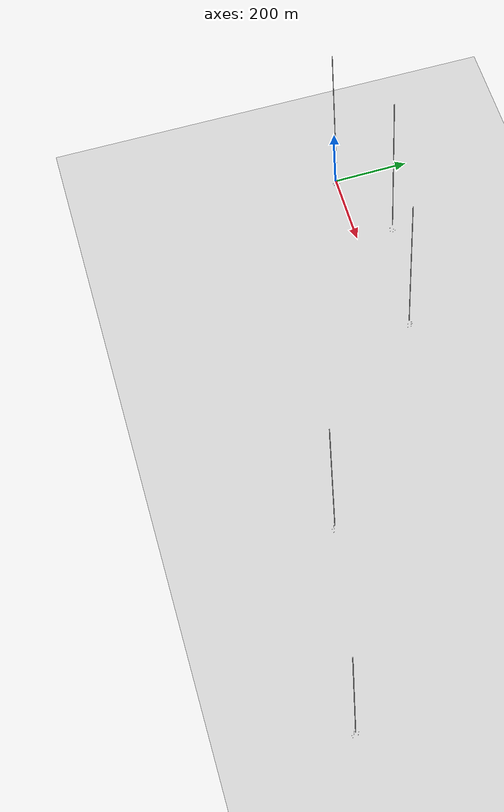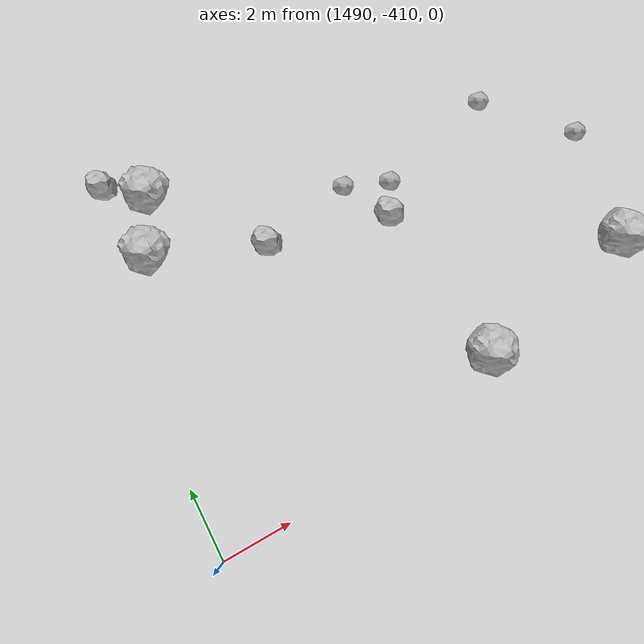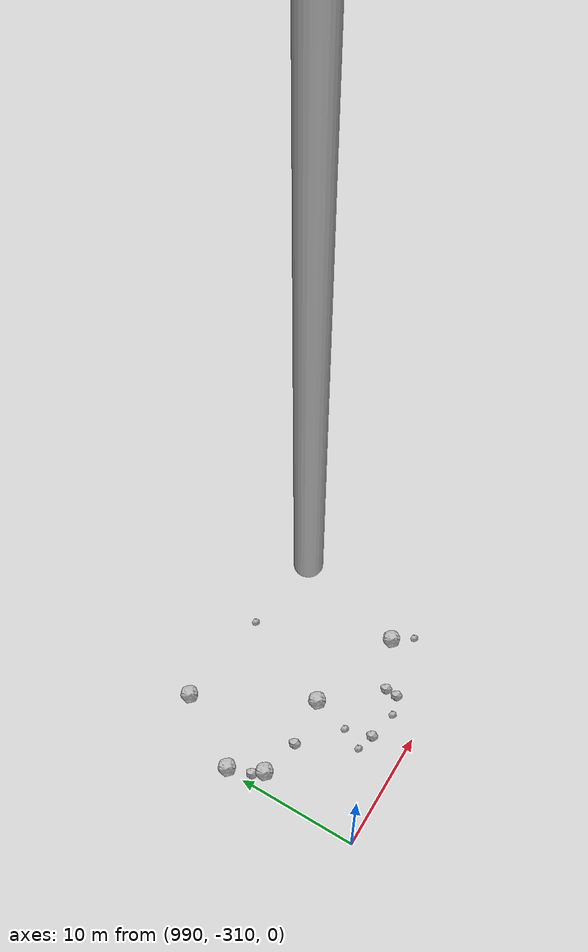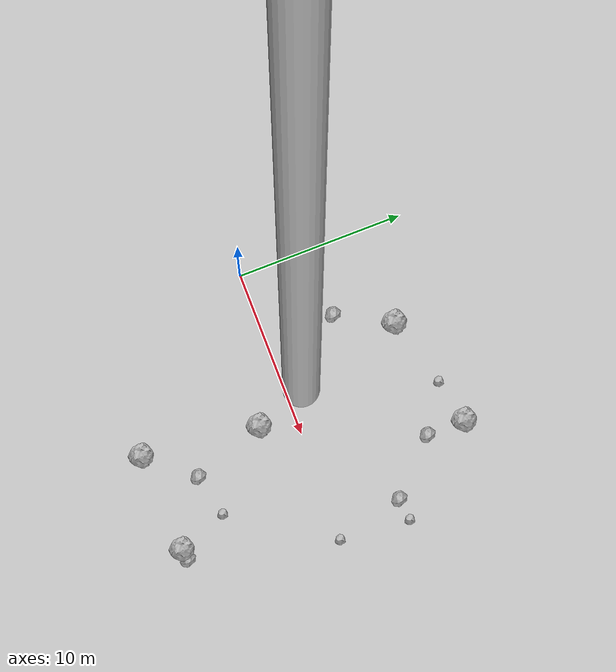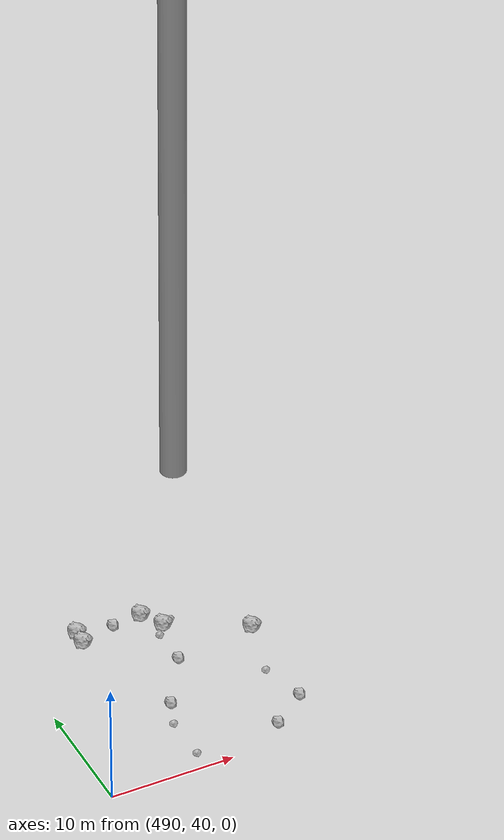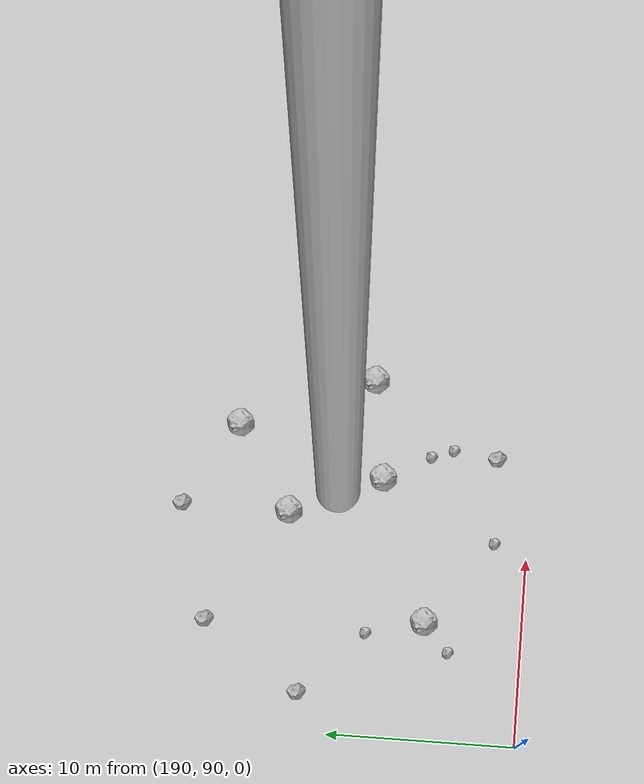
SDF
<?xml version="1.0" ?>
<sdf version="1.6">
  <world name="default">

    <include>
      <uri>model://custom_ground</uri>
    </include>

    <include>
      <uri>model://sun</uri>
    </include>

    <spherical_coordinates>
      <surface_model>EARTH_WGS84</surface_model>
      <latitude_deg>38.161479</latitude_deg>
      <longitude_deg>-122.454630</longitude_deg>
      <elevation>488.0</elevation>
      <heading_deg>90</heading_deg>
    </spherical_coordinates>

    <model name="rock1_0_0">
      <include>
        <uri>model://rock1</uri>
        <pose>8.758022061595101 -2.167556262201793 0.5 0 0 0</pose>
      </include>
    </model>
    <model name="rock1_0_1">
      <include>
        <uri>model://rock1</uri>
        <pose>12.747308979818868 9.137888254019778 0.5 0 0 0</pose>
      </include>
    </model>
    <model name="rock1_0_2">
      <include>
        <uri>model://rock1</uri>
        <pose>13.918314536643452 -8.93957499652679 0.5 0 0 0</pose>
      </include>
    </model>
    <model name="rock1_0_3">
      <include>
        <uri>model://rock1</uri>
        <pose>5.902241719050254 7.416624906572451 0.5 0 0 0</pose>
      </include>
    </model>
    <model name="rock1_0_4">
      <include>
        <uri>model://rock1</uri>
        <pose>7.948062727085697 -9.21395705386282 0.5 0 0 0</pose>
      </include>
    </model>
    <model name="rock2_0_0">
      <include>
        <uri>model://rock2</uri>
        <pose>12.747301875264583 6.844260672744575 0.3 0 0 0</pose>
      </include>
    </model>
    <model name="rock2_0_1">
      <include>
        <uri>model://rock2</uri>
        <pose>4.122836642706886 4.245372961424296 0.3 0 0 0</pose>
      </include>
    </model>
    <model name="rock2_0_2">
      <include>
        <uri>model://rock2</uri>
        <pose>10.232730988618805 -6.526052661289386 0.3 0 0 0</pose>
      </include>
    </model>
    <model name="rock2_0_3">
      <include>
        <uri>model://rock2</uri>
        <pose>15.658463744992279 3.941942861668897 0.3 0 0 0</pose>
      </include>
    </model>
    <model name="rock2_0_4">
      <include>
        <uri>model://rock2</uri>
        <pose>14.53192822437189 -8.81899389280511 0.3 0 0 0</pose>
      </include>
    </model>
    <model name="rock3_0_0">
      <include>
        <uri>model://rock3</uri>
        <pose>16.637907619391648 -0.1607323799335063 0.2 0 0 0</pose>
      </include>
    </model>
    <model name="rock3_0_1">
      <include>
        <uri>model://rock3</uri>
        <pose>17.002565547649255 4.049212226100337 0.2 0 0 0</pose>
      </include>
    </model>
    <model name="rock3_0_2">
      <include>
        <uri>model://rock3</uri>
        <pose>12.776655238546276 -6.013095806476956 0.2 0 0 0</pose>
      </include>
    </model>
    <model name="rock3_0_3">
      <include>
        <uri>model://rock3</uri>
        <pose>4.27464191760153 1.4511072496306436 0.2 0 0 0</pose>
      </include>
    </model>
    <model name="rock3_0_4">
      <include>
        <uri>model://rock3</uri>
        <pose>10.03608378384186 8.567592769247987 0.2 0 0 0</pose>
      </include>
    </model>
    <model name="rock1_1_0">
      <include>
        <uri>model://rock1</uri>
        <pose>201.79906321555296 102.81387062709975 0.5 0 0 0</pose>
      </include>
    </model>
    <model name="rock1_1_1">
      <include>
        <uri>model://rock1</uri>
        <pose>206.33397354626027 105.74539087347796 0.5 0 0 0</pose>
      </include>
    </model>
    <model name="rock1_1_2">
      <include>
        <uri>model://rock1</uri>
        <pose>196.31828325186325 95.22728546820099 0.5 0 0 0</pose>
      </include>
    </model>
    <model name="rock1_1_3">
      <include>
        <uri>model://rock1</uri>
        <pose>203.8822030344351 97.90245396275783 0.5 0 0 0</pose>
      </include>
    </model>
    <model name="rock1_1_4">
      <include>
        <uri>model://rock1</uri>
        <pose>209.16647008587205 98.65886720362327 0.5 0 0 0</pose>
      </include>
    </model>
    <model name="rock2_1_0">
      <include>
        <uri>model://rock2</uri>
        <pose>195.67552920762145 106.87229778171778 0.3 0 0 0</pose>
      </include>
    </model>
    <model name="rock2_1_1">
      <include>
        <uri>model://rock2</uri>
        <pose>205.32384507146293 91.87442791561892 0.3 0 0 0</pose>
      </include>
    </model>
    <model name="rock2_1_2">
      <include>
        <uri>model://rock2</uri>
        <pose>192.15266724761432 101.70731093495526 0.3 0 0 0</pose>
      </include>
    </model>
    <model name="rock2_1_3">
      <include>
        <uri>model://rock2</uri>
        <pose>206.93939192480747 101.31395424799021 0.3 0 0 0</pose>
      </include>
    </model>
    <model name="rock2_1_4">
      <include>
        <uri>model://rock2</uri>
        <pose>201.7998062819508 108.54851844010905 0.3 0 0 0</pose>
      </include>
    </model>
    <model name="rock3_1_0">
      <include>
        <uri>model://rock3</uri>
        <pose>194.74177423472096 93.83807753079792 0.2 0 0 0</pose>
      </include>
    </model>
    <model name="rock3_1_1">
      <include>
        <uri>model://rock3</uri>
        <pose>205.16748136728341 95.36690413654945 0.2 0 0 0</pose>
      </include>
    </model>
    <model name="rock3_1_2">
      <include>
        <uri>model://rock3</uri>
        <pose>200.72877328347622 91.72163151611977 0.2 0 0 0</pose>
      </include>
    </model>
    <model name="rock3_1_3">
      <include>
        <uri>model://rock3</uri>
        <pose>205.5995452880813 94.18192937028144 0.2 0 0 0</pose>
      </include>
    </model>
    <model name="rock3_1_4">
      <include>
        <uri>model://rock3</uri>
        <pose>195.4917216092638 98.2724196733259 0.2 0 0 0</pose>
      </include>
    </model>
    <model name="rock1_2_0">
      <include>
        <uri>model://rock1</uri>
        <pose>502.2416868467355 56.30462766466054 0.5 0 0 0</pose>
      </include>
    </model>
    <model name="rock1_2_1">
      <include>
        <uri>model://rock1</uri>
        <pose>501.1849760961252 58.136973865561274 0.5 0 0 0</pose>
      </include>
    </model>
    <model name="rock1_2_2">
      <include>
        <uri>model://rock1</uri>
        <pose>495.79475698081666 58.33233853830049 0.5 0 0 0</pose>
      </include>
    </model>
    <model name="rock1_2_3">
      <include>
        <uri>model://rock1</uri>
        <pose>495.7209683920381 57.05045498396697 0.5 0 0 0</pose>
      </include>
    </model>
    <model name="rock1_2_4">
      <include>
        <uri>model://rock1</uri>
        <pose>508.3131572111455 53.0518072134041 0.5 0 0 0</pose>
      </include>
    </model>
    <model name="rock2_2_0">
      <include>
        <uri>model://rock2</uri>
        <pose>501.45855150539234 52.20645595950927 0.3 0 0 0</pose>
      </include>
    </model>
    <model name="rock2_2_1">
      <include>
        <uri>model://rock2</uri>
        <pose>507.7619116630322 44.19291594569553 0.3 0 0 0</pose>
      </include>
    </model>
    <model name="rock2_2_2">
      <include>
        <uri>model://rock2</uri>
        <pose>498.69017713297546 58.068054322039075 0.3 0 0 0</pose>
      </include>
    </model>
    <model name="rock2_2_3">
      <include>
        <uri>model://rock2</uri>
        <pose>504.7764538503741 41.94937689401901 0.3 0 0 0</pose>
      </include>
    </model>
    <model name="rock2_2_4">
      <include>
        <uri>model://rock2</uri>
        <pose>498.5546278802087 47.59932471178493 0.3 0 0 0</pose>
      </include>
    </model>
    <model name="rock3_2_0">
      <include>
        <uri>model://rock3</uri>
        <pose>501.45383018797617 55.37997396602957 0.2 0 0 0</pose>
      </include>
    </model>
    <model name="rock3_2_1">
      <include>
        <uri>model://rock3</uri>
        <pose>497.6853350412277 45.302572091780156 0.2 0 0 0</pose>
      </include>
    </model>
    <model name="rock3_2_2">
      <include>
        <uri>model://rock3</uri>
        <pose>497.7365821443546 41.47362438490154 0.2 0 0 0</pose>
      </include>
    </model>
    <model name="rock3_2_3">
      <include>
        <uri>model://rock3</uri>
        <pose>506.8459874838413 47.9340622017138 0.2 0 0 0</pose>
      </include>
    </model>
    <model name="rock3_2_4">
      <include>
        <uri>model://rock3</uri>
        <pose>503.0545149486768 56.833135637608 0.2 0 0 0</pose>
      </include>
    </model>
    <model name="rock1_3_0">
      <include>
        <uri>model://rock1</uri>
        <pose>991.4537867975869 -301.2012765627625 0.5 0 0 0</pose>
      </include>
    </model>
    <model name="rock1_3_1">
      <include>
        <uri>model://rock1</uri>
        <pose>1006.9251008283419 -304.2683139003471 0.5 0 0 0</pose>
      </include>
    </model>
    <model name="rock1_3_2">
      <include>
        <uri>model://rock1</uri>
        <pose>998.8674258868804 -301.70660522499054 0.5 0 0 0</pose>
      </include>
    </model>
    <model name="rock1_3_3">
      <include>
        <uri>model://rock1</uri>
        <pose>993.9120033238531 -292.3897820378438 0.5 0 0 0</pose>
      </include>
    </model>
    <model name="rock1_3_4">
      <include>
        <uri>model://rock1</uri>
        <pose>990.2134643517373 -298.44897366519314 0.5 0 0 0</pose>
      </include>
    </model>
    <model name="rock2_3_0">
      <include>
        <uri>model://rock2</uri>
        <pose>994.7344396284496 -302.00957752212224 0.3 0 0 0</pose>
      </include>
    </model>
    <model name="rock2_3_1">
      <include>
        <uri>model://rock2</uri>
        <pose>1002.7315420631727 -306.05892269588315 0.3 0 0 0</pose>
      </include>
    </model>
    <model name="rock2_3_2">
      <include>
        <uri>model://rock2</uri>
        <pose>998.5276452975567 -307.06688049850317 0.3 0 0 0</pose>
      </include>
    </model>
    <model name="rock2_3_3">
      <include>
        <uri>model://rock2</uri>
        <pose>1002.6414803017271 -307.0746850152176 0.3 0 0 0</pose>
      </include>
    </model>
    <model name="rock2_3_4">
      <include>
        <uri>model://rock2</uri>
        <pose>990.8166997964463 -300.3798892970157 0.3 0 0 0</pose>
      </include>
    </model>
    <model name="rock3_3_0">
      <include>
        <uri>model://rock3</uri>
        <pose>1001.0135238277167 -307.6257511984734 0.2 0 0 0</pose>
      </include>
    </model>
    <model name="rock3_3_1">
      <include>
        <uri>model://rock3</uri>
        <pose>1002.4153614612901 -293.51141895364736 0.2 0 0 0</pose>
      </include>
    </model>
    <model name="rock3_3_2">
      <include>
        <uri>model://rock3</uri>
        <pose>997.9165555296393 -304.86863093471345 0.2 0 0 0</pose>
      </include>
    </model>
    <model name="rock3_3_3">
      <include>
        <uri>model://rock3</uri>
        <pose>1008.0405843066754 -305.8698056617915 0.2 0 0 0</pose>
      </include>
    </model>
    <model name="rock3_3_4">
      <include>
        <uri>model://rock3</uri>
        <pose>997.0302487151245 -306.6654904068339 0.2 0 0 0</pose>
      </include>
    </model>
    <model name="rock1_4_0">
      <include>
        <uri>model://rock1</uri>
        <pose>1502.1059207772728 -394.9071725880812 0.5 0 0 0</pose>
      </include>
    </model>
    <model name="rock1_4_1">
      <include>
        <uri>model://rock1</uri>
        <pose>1491.808710432963 -401.30981063761726 0.5 0 0 0</pose>
      </include>
    </model>
    <model name="rock1_4_2">
      <include>
        <uri>model://rock1</uri>
        <pose>1492.6004386756451 -399.50257272526653 0.5 0 0 0</pose>
      </include>
    </model>
    <model name="rock1_4_3">
      <include>
        <uri>model://rock1</uri>
        <pose>1504.6490096596879 -407.58076651116613 0.5 0 0 0</pose>
      </include>
    </model>
    <model name="rock1_4_4">
      <include>
        <uri>model://rock1</uri>
        <pose>1499.1717901369911 -408.66222276131515 0.5 0 0 0</pose>
      </include>
    </model>
    <model name="rock2_4_0">
      <include>
        <uri>model://rock2</uri>
        <pose>1502.4025163177637 -394.2411795870043 0.3 0 0 0</pose>
      </include>
    </model>
    <model name="rock2_4_1">
      <include>
        <uri>model://rock2</uri>
        <pose>1495.101085229221 -402.6712436004504 0.3 0 0 0</pose>
      </include>
    </model>
    <model name="rock2_4_2">
      <include>
        <uri>model://rock2</uri>
        <pose>1507.788306240307 -394.56311430125317 0.3 0 0 0</pose>
      </include>
    </model>
    <model name="rock2_4_3">
      <include>
        <uri>model://rock2</uri>
        <pose>1498.8667767446636 -403.5949070639094 0.3 0 0 0</pose>
      </include>
    </model>
    <model name="rock2_4_4">
      <include>
        <uri>model://rock2</uri>
        <pose>1491.4138785179268 -398.57692048896087 0.3 0 0 0</pose>
      </include>
    </model>
    <model name="rock3_4_0">
      <include>
        <uri>model://rock3</uri>
        <pose>1499.43548283596 -402.7074751020609 0.2 0 0 0</pose>
      </include>
    </model>
    <model name="rock3_4_1">
      <include>
        <uri>model://rock3</uri>
        <pose>1503.5068959347623 -401.5942898398426 0.2 0 0 0</pose>
      </include>
    </model>
    <model name="rock3_4_2">
      <include>
        <uri>model://rock3</uri>
        <pose>1505.6177209286686 -404.0268691117891 0.2 0 0 0</pose>
      </include>
    </model>
    <model name="rock3_4_3">
      <include>
        <uri>model://rock3</uri>
        <pose>1498.063728438157 -402.1689211475888 0.2 0 0 0</pose>
      </include>
    </model>
    <model name="rock3_4_4">
      <include>
        <uri>model://rock3</uri>
        <pose>1495.8296723247145 -391.5770305047319 0.2 0 0 0</pose>
      </include>
    </model>

    <model name="cylinder_1">
      <static>true</static>
      <link name="link">
        <visual name="visual">
          <geometry>
            <cylinder>
              <radius>1</radius>
              <length>500</length>
            </cylinder>
          </geometry>
        </visual>
      </link>
      <pose>10 0 270 0 0 0</pose>
    </model>

    <model name="cylinder_2">
      <static>true</static>
      <link name="link">
        <visual name="visual">
          <geometry>
            <cylinder>
              <radius>1</radius>
              <length>500</length>
            </cylinder>
          </geometry>
        </visual>
      </link>
      <pose>200 100 270 0 0 0</pose>
    </model>

    <model name="cylinder_3">
      <static>true</static>
      <link name="link">
        <visual name="visual">
          <geometry>
            <cylinder>
              <radius>1</radius>
              <length>500</length>
            </cylinder>
          </geometry>
        </visual>
      </link>
      <pose>500 50 270 0 0 0</pose>
    </model>

    <model name="cylinder_4">
      <static>true</static>
      <link name="link">
        <visual name="visual">
          <geometry>
            <cylinder>
              <radius>1</radius>
              <length>500</length>
            </cylinder>
          </geometry>
        </visual>
      </link>
      <pose>1000 -300 270 0 0 0</pose>
    </model>

    <model name="cylinder_5">
      <static>true</static>
      <link name="link">
        <visual name="visual">
          <geometry>
            <cylinder>
              <radius>1</radius>
              <length>500</length>
            </cylinder>
          </geometry>
        </visual>
      </link>
      <pose>1500 -400 270 0 0 0</pose>
    </model>

  </world>
</sdf>

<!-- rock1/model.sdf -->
<sdf version="1.6">
  <model name="rock1">
    <static>true</static> <!-- Set to true if the model should not move -->
    <pose>0 0 0 0 0 0</pose>

    <!--z offset is 0.5 for full scale-->

    <link name="link">
      <collision name="rock1_collision">
        <geometry>
          <mesh>
            <uri>model://meshes/rock1.dae</uri>
          </mesh>
        </geometry>
      </collision>
      <visual name="rock1_visual">
        <geometry>
          <mesh>
            <uri>model://meshes/rock1.dae</uri>
          </mesh>
        </geometry>
        <material>
          <script>
            <uri>model://materials/scripts/sand_pebbles.material</uri>
            <name>custom_ground/Image</name>
          </script>
        </material>
      </visual>
    </link>
  </model>
</sdf>

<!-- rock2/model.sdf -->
<sdf version="1.6">
  <model name="rock2">
    <static>true</static> <!-- Set to true if the model should not move -->
    <pose>0 0 0 0 0 0</pose>

    <!--z offset is 0.3 for full scale-->

    <link name="link">
      <collision name="rock2_collision">
        <geometry>
          <mesh>
            <uri>model://meshes/rock2.dae</uri>
          </mesh>
        </geometry>
      </collision>
      <visual name="rock2_visual">
        <geometry>
          <mesh>
            <uri>model://meshes/rock2.dae</uri>
          </mesh>
        </geometry>
        <material>
          <script>
            <uri>model://materials/scripts/sand_pebbles.material</uri>
            <name>custom_ground/Image</name>
          </script>
        </material>
      </visual>
    </link>
  </model>
</sdf>

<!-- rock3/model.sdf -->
<sdf version="1.6">
  <model name="rock3">
    <static>true</static> <!-- Set to true if the model should not move -->
    <pose>0 0 0 0 0 0</pose>

    <!--z offset is 0.2 for full scale-->

    <link name="link">
      <collision name="rock3_collision">
        <geometry>
          <mesh>
            <uri>model://meshes/rock3.dae</uri>
          </mesh>
        </geometry>
      </collision>
      <visual name="rock3_visual">
        <geometry>
          <mesh>
            <uri>model://meshes/rock3.dae</uri>
          </mesh>
        </geometry>
        <material>
          <script>
            <uri>model://materials/scripts/sand_pebbles.material</uri>
            <name>custom_ground/Image</name>
          </script>
        </material>
      </visual>
    </link>
  </model>
</sdf>

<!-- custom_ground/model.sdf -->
<sdf version="1.6">
  <model name="custom_ground">
    <static>true</static> <!-- Ground is static and immovable -->
    <link name="ground_link">
      <pose>240 0 0 0 0 0</pose> <!-- Position and orientation relative to the world -->
      <!-- Visual Representation -->
      <visual name="ground_visual">
        <geometry>
          <plane>
            <normal>0 0 1</normal> <!-- Upward facing plane -->
            <size>500 500</size> <!-- Size of the plane -->
          </plane>
        </geometry>
        <material>
          <script>
            <uri>model://materials/scripts/sand_pebbles.material</uri>
            <name>custom_ground/Image</name>
          </script>
        </material>
      </visual>

      <!-- Collision Representation -->
      <collision name="ground_collision">
        <geometry>
          <plane>
            <normal>0 0 1</normal>
            <size>100 100</size>
          </plane>
        </geometry>
      </collision>

    </link>
  </model>
</sdf>
